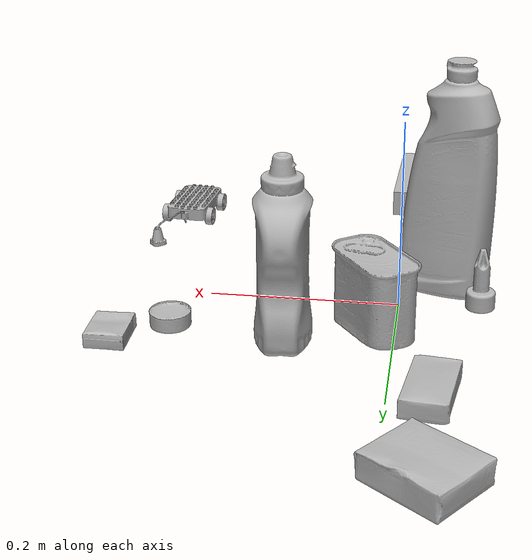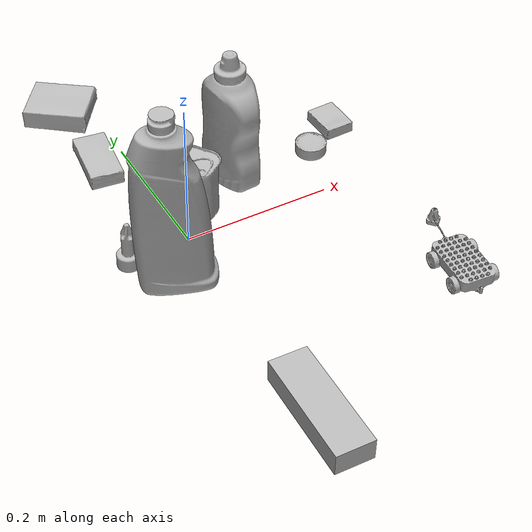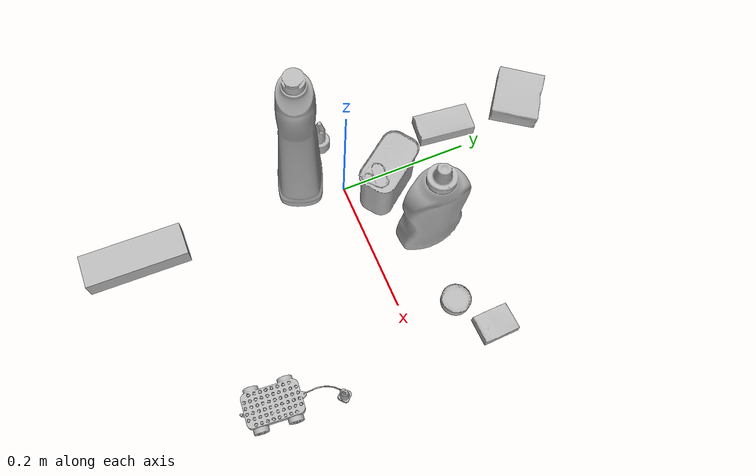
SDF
<sdf version="1.4">
  <world name="default">
    <light name="light1" type="point">
      <pose>0 0 1 0 0 0</pose>
      <diffuse>3 3 3 1</diffuse>
      <specular>3 3 3 1</specular>
    </light>
    <light name="light2" type="point">
      <pose>0 0.5 2 0 0 0</pose>
      <diffuse>1 1 1 1</diffuse>
      <specular>1 1 1 1</specular>
    </light>
    <light name="light3" type="point">
      <pose>0 0.5 2 0 0 0</pose>
      <diffuse>3 3 3 1</diffuse>
      <specular>3 3 3 1</specular>
    </light>
    <scene>
      <ambient>0.7 0.7 0.7</ambient>
    </scene>
    <model name="bottle1">
      <link name="link_bottle1">
        <collision name="default">
          <geometry>
            <mesh>
              <uri>model://bleach_cleanser/collision_meshes/collision.obj</uri>
              <scale>1.0 1.0 1.0</scale>
            </mesh>
          </geometry>
          <surface>
            <friction>
              <ode>
                <mu>0.5</mu>
                <mu2>0.5</mu2>
              </ode>
            </friction>
          <contact>
        <ode>
            <max_vel>0</max_vel>
            <min_depth>0.0001</min_depth>
            <kp>1e8</kp>
        </ode>
    </contact></surface>
        </collision>
        <visual name="default">
          <geometry>
            <mesh>
              <uri>model://bleach_cleanser/visual_meshes/visual.dae</uri>
              <scale>1.0 1.0 1.0</scale>
            </mesh>
          </geometry>
        </visual>
        <inertial>
          <mass>0.8435376882553101</mass>
          <pose>0.00012193185102660209 0.0037838835269212723 -0.02442161925137043 -0.0738167136291003 0.00042011570398771517 -0.0068750683244174</pose>
          <inertia>
            <ixx>0.0041056215</ixx>
            <iyy>0.0038258375</iyy>
            <izz>0.0007019545</izz>
            <ixy>0</ixy>
            <ixz>0</ixz>
            <iyz>0</iyz>
          </inertia>
        </inertial>
      </link>
      <pose>-0.0438956581056118 -0.05373765155673027 0.125764399766922 -0.004042850309095249 0.005259692424260819 1.239030175760202</pose>
    </model>
    <model name="bottle2">
      <link name="link_bottle2">
        <collision name="default">
          <geometry>
            <mesh>
              <uri>model://mustard_bottle/collision_meshes/collision.obj</uri>
              <scale>1.0 1.0 1.0</scale>
            </mesh>
          </geometry>
          <surface>
            <friction>
              <ode>
                <mu>0.5</mu>
                <mu2>0.5</mu2>
              </ode>
            </friction>
          <contact>
        <ode>
            <max_vel>0</max_vel>
            <min_depth>0.0001</min_depth>
            <kp>1e8</kp>
        </ode>
    </contact></surface>
        </collision>
        <visual name="default">
          <geometry>
            <mesh>
              <uri>model://mustard_bottle/visual_meshes/visual.dae</uri>
              <scale>1.0 1.0 1.0</scale>
            </mesh>
          </geometry>
        </visual>
        <inertial>
          <mass>0.5862947106361389</mass>
          <pose>0.0005032453336752951 -0.00015647400869056582 -0.01747579500079155 0.0004182326333961274 0.0009465780125852031 0.02485369627950655</pose>
          <inertia>
            <ixx>0.0016280604</ixx>
            <iyy>0.001428485</iyy>
            <izz>0.00042907606</izz>
            <ixy>0</ixy>
            <ixz>0</ixz>
            <iyz>0</iyz>
          </inertia>
        </inertial>
      </link>
      <pose>0.10941366851329803 0.08857368677854538 0.09616309404373169 0.0006224587481409855 0.0010490909015677481 -3.063219945783691</pose>
    </model>
    <model name="toy1">
      <link name="link_toy1">
        <collision name="default">
          <geometry>
            <mesh>
              <uri>model://d_toy_airplane/collision_meshes/collision.obj</uri>
              <scale>1.0 1.0 1.0</scale>
            </mesh>
          </geometry>
          <surface>
            <friction>
              <ode>
                <mu>0.5</mu>
                <mu2>0.5</mu2>
              </ode>
            </friction>
          <contact>
        <ode>
            <max_vel>0</max_vel>
            <min_depth>0.0001</min_depth>
            <kp>1e8</kp>
        </ode>
    </contact></surface>
        </collision>
        <visual name="default">
          <geometry>
            <mesh>
              <uri>model://d_toy_airplane/visual_meshes/visual.dae</uri>
              <scale>1.0 1.0 1.0</scale>
            </mesh>
          </geometry>
        </visual>
        <inertial>
          <mass>0.016342557966709137</mass>
          <pose>9.410292841494083e-05 -5.809347931062803e-05 -0.011728093959391117 0.0002665850352305412 0.004678995185611379 0.5193821656772198</pose>
          <inertia>
            <ixx>4.8991824e-06</ixx>
            <iyy>4.9028777e-06</iyy>
            <izz>1.4790946e-06</izz>
            <ixy>0</ixy>
            <ixz>0</ixz>
            <iyz>0</iyz>
          </inertia>
        </inertial>
      </link>
      <pose>-0.08478377759456635 -0.005304355174303055 0.033342767506837845 -0.0009014590184260336 -0.00031294392899013893 0.15375374639575673</pose>
    </model>
    <model name="toy2">
      <link name="link_toy2">
        <collision name="default">
          <geometry>
            <mesh>
              <uri>model://g_lego_duplo/collision_meshes/collision.obj</uri>
              <scale>0.5 0.5 0.5</scale>
            </mesh>
          </geometry>
          <surface>
            <friction>
              <ode>
                <mu>0.5</mu>
                <mu2>0.5</mu2>
              </ode>
            </friction>
          <contact>
        <ode>
            <max_vel>0</max_vel>
            <min_depth>0.0001</min_depth>
            <kp>1e8</kp>
        </ode>
    </contact></surface>
        </collision>
        <visual name="default">
          <geometry>
            <mesh>
              <uri>model://g_lego_duplo/visual_meshes/visual.dae</uri>
              <scale>0.5 0.5 0.5</scale>
            </mesh>
          </geometry>
        </visual>
        <inertial>
          <mass>0.06075087562203407</mass>
          <pose>-0.02502383105456829 0.0008777320035733283 0.0019403373589739203 0.010962969944672394 0.038108282316868566 -0.09653022106038826</pose>
          <inertia>
            <ixx>2.2007183e-05</ixx>
            <iyy>6.65348e-05</iyy>
            <izz>8.323752e-05</izz>
            <ixy>0</ixy>
            <ixz>0</ixz>
            <iyz>0</iyz>
          </inertia>
        </inertial>
      </link>
      <pose>0.2706453204154968 -0.18460017442703247 0.014965472742915154 -7.772457222628463e-05 -0.003654283302861777 1.4831732067788612</pose>
    </model>
    <model name="can1">
      <link name="link_can1">
        <collision name="default">
          <geometry>
            <mesh>
              <uri>model://potted_meat_can/collision_meshes/collision.obj</uri>
              <scale>1.0 1.0 1.0</scale>
            </mesh>
          </geometry>
          <surface>
            <friction>
              <ode>
                <mu>0.5</mu>
                <mu2>0.5</mu2>
              </ode>
            </friction>
          <contact>
        <ode>
            <max_vel>0</max_vel>
            <min_depth>0.0001</min_depth>
            <kp>1e8</kp>
        </ode>
    </contact></surface>
        </collision>
        <visual name="default">
          <geometry>
            <mesh>
              <uri>model://potted_meat_can/visual_meshes/visual.dae</uri>
              <scale>1.0 1.0 1.0</scale>
            </mesh>
          </geometry>
        </visual>
        <inertial>
          <mass>0.20078136026859283</mass>
          <pose>0.00022888144303578883 -5.9891190176131204e-05 -0.0006367445457726717 -0.02809335636395505 -0.007232596981483405 0.015406261474000347</pose>
          <inertia>
            <ixx>0.0002582842</ixx>
            <iyy>0.00015692727</iyy>
            <izz>0.0001878526</izz>
            <ixy>0</ixy>
            <ixz>0</ixz>
            <iyz>0</iyz>
          </inertia>
        </inertial>
      </link>
      <pose>0.021296387538313866 0.059959713369607925 0.04212801530957222 -8.407019904101194e-08 -1.30422793421639e-07 0.6230611578575107</pose>
    </model>
    <model name="can2">
      <link name="link_can2">
        <collision name="default">
          <geometry>
            <mesh>
              <uri>model://tuna_fish_can/collision_meshes/collision.obj</uri>
              <scale>0.5 0.5 0.5</scale>
            </mesh>
          </geometry>
          <surface>
            <friction>
              <ode>
                <mu>0.5</mu>
                <mu2>0.5</mu2>
              </ode>
            </friction>
          <contact>
        <ode>
            <max_vel>0</max_vel>
            <min_depth>0.0001</min_depth>
            <kp>1e8</kp>
        </ode>
    </contact></surface>
        </collision>
        <visual name="default">
          <geometry>
            <mesh>
              <uri>model://tuna_fish_can/visual_meshes/visual.dae</uri>
              <scale>0.5 0.5 0.5</scale>
            </mesh>
          </geometry>
        </visual>
        <inertial>
          <mass>0.014736190438270569</mass>
          <pose>-2.036184559983667e-05 -7.256420758494642e-06 -0.0005269023822620511 -0.0017944748482382063 0.00017166274907885265 0.24056368509195397</pose>
          <inertia>
            <ixx>1.992355e-06</ixx>
            <iyy>1.9840513e-06</iyy>
            <izz>3.409204e-06</izz>
            <ixy>0</ixy>
            <ixz>0</ixz>
            <iyz>0</iyz>
          </inertia>
        </inertial>
      </link>
      <pose>0.22611407935619354 0.07710832357406616 0.00851999968290329 -1.2658821609162075e-08 -2.59999157135237e-09 -0.6989718327481889</pose>
    </model>
    <model name="box1">
      <link name="link_box1">
        <collision name="default">
          <geometry>
            <mesh>
              <uri>model://sugar_box/collision_meshes/collision.obj</uri>
              <scale>0.5 0.5 0.5</scale>
            </mesh>
          </geometry>
          <surface>
            <friction>
              <ode>
                <mu>0.5</mu>
                <mu2>0.5</mu2>
              </ode>
            </friction>
          <contact>
        <ode>
            <max_vel>0</max_vel>
            <min_depth>0.0001</min_depth>
            <kp>1e8</kp>
        </ode>
    </contact></surface>
        </collision>
        <visual name="default">
          <geometry>
            <mesh>
              <uri>model://sugar_box/visual_meshes/visual.dae</uri>
              <scale>0.5 0.5 0.5</scale>
            </mesh>
          </geometry>
        </visual>
        <inertial>
          <mass>0.12222740799188614</mass>
          <pose>0.0005171863595023751 1.9245549992774613e-05 -0.00018182404164690524 -0.000404625834306888 0.0010506637544316808 0.0026153790219515644</pose>
          <inertia>
            <ixx>2.5459884e-05</ixx>
            <iyy>8.229157e-05</iyy>
            <izz>9.851283e-05</izz>
            <ixy>0</ixy>
            <ixz>0</ixz>
            <iyz>0</iyz>
          </inertia>
        </inertial>
      </link>
      <pose>-0.03993557021021843 0.18528686463832855 0.011399304494261742 0.0007752041647172911 -0.02343252294866911 1.442463070702821</pose>
    </model>
    <model name="box2">
      <link name="link_box2">
        <collision name="default">
          <geometry>
            <mesh>
              <uri>model://jenga/collision_meshes/collision.obj</uri>
              <scale>1.0 1.0 1.0</scale>
            </mesh>
          </geometry>
          <surface>
            <friction>
              <ode>
                <mu>0.5</mu>
                <mu2>0.5</mu2>
              </ode>
            </friction>
          <contact>
        <ode>
            <max_vel>0</max_vel>
            <min_depth>0.0001</min_depth>
            <kp>1e8</kp>
        </ode>
    </contact></surface>
        </collision>
        <visual name="default">
          <geometry>
            <mesh>
              <uri>model://jenga/visual_meshes/visual.dae</uri>
              <scale>1.0 1.0 1.0</scale>
            </mesh>
          </geometry>
        </visual>
        <inertial>
          <mass>0.17645145952701569</mass>
          <pose>-2.502855807051674e-07 -0.00010250011109746993 -4.0923405322246253e-05 0.0 -7.342155186052628e-07 0.0</pose>
          <inertia>
            <ixx>4.8828406e-05</ixx>
            <iyy>0.00033085994</iyy>
            <izz>0.00035322108</izz>
            <ixy>0</ixy>
            <ixz>0</ixz>
            <iyz>0</iyz>
          </inertia>
        </inertial>
      </link>
      <pose>-0.005072536878287792 -0.32522299885749817 0.01499999687075615 1.0534842500042635e-08 6.210838034806985e-09 1.54288926449308</pose>
    </model>
    <model name="box3">
      <link name="link_box3">
        <collision name="default">
          <geometry>
            <mesh>
              <uri>model://gelatin_box/collision_meshes/collision.obj</uri>
              <scale>1.0 1.0 1.0</scale>
            </mesh>
          </geometry>
          <surface>
            <friction>
              <ode>
                <mu>0.5</mu>
                <mu2>0.5</mu2>
              </ode>
            </friction>
          <contact>
        <ode>
            <max_vel>0</max_vel>
            <min_depth>0.0001</min_depth>
            <kp>1e8</kp>
        </ode>
    </contact></surface>
        </collision>
        <visual name="default">
          <geometry>
            <mesh>
              <uri>model://gelatin_box/visual_meshes/visual.dae</uri>
              <scale>1.0 1.0 1.0</scale>
            </mesh>
          </geometry>
        </visual>
        <inertial>
          <mass>0.13059620559215546</mass>
          <pose>0.0004319618456065655 0.00011156871914863586 -0.0003640321083366871 -0.0010503721928909568 -0.00475581775899517 0.01644055574591333</pose>
          <inertia>
            <ixx>9.219027e-05</ixx>
            <iyy>6.585102e-05</iyy>
            <izz>0.00014033413</izz>
            <ixy>0</ixy>
            <ixz>0</ixz>
            <iyz>0</iyz>
          </inertia>
        </inertial>
      </link>
      <pose>-0.039202187210321426 0.31513160467147827 0.01516831573098898 0.00559749248537141 -0.007304540540782699 0.9213352178656676</pose>
    </model>
    <model name="box4">
      <link name="link_box4">
        <collision name="default">
          <geometry>
            <mesh>
              <uri>model://cracker_box/collision_meshes/collision.obj</uri>
              <scale>0.25 0.25 0.25</scale>
            </mesh>
          </geometry>
          <surface>
            <friction>
              <ode>
                <mu>0.5</mu>
                <mu2>0.5</mu2>
              </ode>
            </friction>
          <contact>
        <ode>
            <max_vel>0</max_vel>
            <min_depth>0.0001</min_depth>
            <kp>1e8</kp>
        </ode>
    </contact></surface>
        </collision>
        <visual name="default">
          <geometry>
            <mesh>
              <uri>model://cracker_box/visual_meshes/visual.dae</uri>
              <scale>0.25 0.25 0.25</scale>
            </mesh>
          </geometry>
        </visual>
        <inertial>
          <mass>0.04771818593144417</mass>
          <pose>0.0002366032567806542 6.358561950037256e-05 -0.00042573839891701937 -0.00031620769108308636 -0.011106489600173282 0.0025467959336867136</pose>
          <inertia>
            <ixx>7.5858593e-06</ixx>
            <iyy>1.2525745e-05</iyy>
            <izz>1.7875387e-05</izz>
            <ixy>0</ixy>
            <ixz>0</ixz>
            <iyz>0</iyz>
          </inertia>
        </inertial>
      </link>
      <pose>0.2788536846637726 0.11321286857128143 0.009096025489270687 -0.014051128173800803 -0.005016293232870046 1.5968706555602263</pose>
    </model>
  <physics type="ode">
      <max_contacts>50</max_contacts>
      <ode>
        <solver>
          <type>quick</type>
          <iters>75</iters>
        </solver>
        <constraints>
          <contact_max_correcting_vel>0</contact_max_correcting_vel>
          <contact_surface_layer>0</contact_surface_layer>
        </constraints>
      </ode>
    </physics></world>
</sdf>
